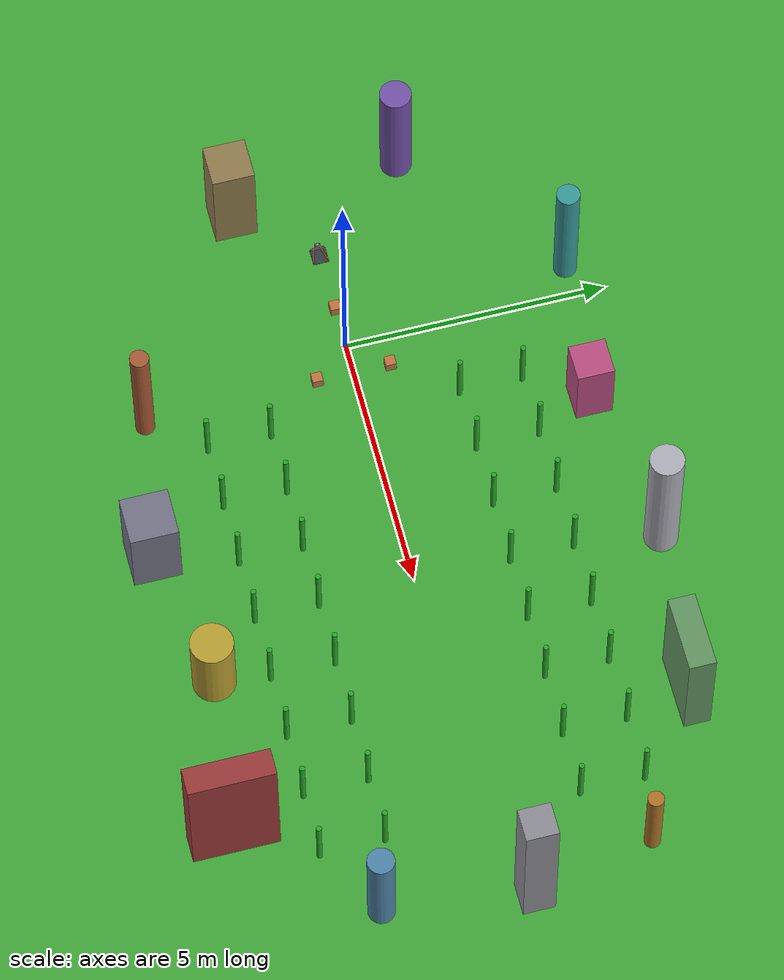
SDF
<?xml version="1.0" ?>
<sdf version="1.8">
  <world name="rover_world">

    <physics name="1ms" type="ignored">
      <max_step_size>0.002</max_step_size>
      <real_time_factor>1.0</real_time_factor>
    </physics>

    <plugin filename="ignition-gazebo-physics-system"        name="ignition::gazebo::systems::Physics"/>
    <plugin filename="ignition-gazebo-user-commands-system"  name="ignition::gazebo::systems::UserCommands"/>
    <plugin filename="ignition-gazebo-scene-broadcaster-system" name="ignition::gazebo::systems::SceneBroadcaster"/>
    <!-- Sensors plugin lives at WORLD level (not model level) so 3–10 rovers
         share one rendering pipeline instead of instantiating N competing ones. -->
    <!-- IMU is not a render sensor; it needs its own system or /rover_N/imu
         never publishes (found 2026-07-16 during Swarm-SLAM integration). -->
    <plugin filename="ignition-gazebo-imu-system" name="ignition::gazebo::systems::Imu"/>
    <plugin filename="ignition-gazebo-sensors-system" name="ignition::gazebo::systems::Sensors">
      <render_engine>ogre</render_engine>
    </plugin>

    <light name="sun" type="directional">
      <pose>0 0 10 0 0 0</pose>
      <cast_shadows>true</cast_shadows>
      <diffuse>1 1 1 1</diffuse>
      <specular>0.3 0.3 0.3 1</specular>
      <direction>-0.3 -0.4 -0.9</direction>
    </light>

    <scene>
      <ambient>0.5 0.5 0.5 1</ambient>
      <background>0.6 0.75 0.9 1</background>
      <grid>false</grid>
    </scene>

    <!-- GRASS GROUND -->
    <model name="ground">
      <static>true</static>
      <link name="ground_link">
        <collision name="ground_collision">
          <geometry><plane><normal>0 0 1</normal><size>30 30</size></plane></geometry>
          <surface><friction><ode><mu>1.0</mu><mu2>1.0</mu2></ode></friction></surface>
        </collision>
        <visual name="ground_visual">
          <geometry><plane><normal>0 0 1</normal><size>30 30</size></plane></geometry>
          <material>
            <ambient>0.20 0.55 0.18 1</ambient>
            <diffuse>0.25 0.65 0.22 1</diffuse>
            <specular>0.05 0.1 0.05 1</specular>
          </material>
        </visual>
      </link>
    </model>

    <!-- Small boxes near spawn so the 2 m sonars register something -->
    <model name="box_near_left">
      <static>true</static>
      <pose>0.6 0.7 0.1 0 0 0</pose>
      <link name="l">
        <collision name="c"><geometry><box><size>0.2 0.2 0.2</size></box></geometry></collision>
        <visual name="v">
          <geometry><box><size>0.2 0.2 0.2</size></box></geometry>
          <material><ambient>0.7 0.4 0.2 1</ambient><diffuse>0.75 0.45 0.25 1</diffuse></material>
        </visual>
      </link>
    </model>
    <model name="box_near_right">
      <static>true</static>
      <pose>0.6 -0.7 0.1 0 0 0</pose>
      <link name="l">
        <collision name="c"><geometry><box><size>0.2 0.2 0.2</size></box></geometry></collision>
        <visual name="v">
          <geometry><box><size>0.2 0.2 0.2</size></box></geometry>
          <material><ambient>0.7 0.4 0.2 1</ambient><diffuse>0.75 0.45 0.25 1</diffuse></material>
        </visual>
      </link>
    </model>
    <model name="box_behind">
      <static>true</static>
      <pose>-0.8 0.0 0.1 0 0 0</pose>
      <link name="l">
        <collision name="c"><geometry><box><size>0.2 0.2 0.2</size></box></geometry></collision>
        <visual name="v">
          <geometry><box><size>0.2 0.2 0.2</size></box></geometry>
          <material><ambient>0.7 0.4 0.2 1</ambient><diffuse>0.75 0.45 0.25 1</diffuse></material>
        </visual>
      </link>
    </model>

    <!-- Row Y=-3.0 -->
    <model name="crop_r1_p1"><static>true</static><pose>1.5 -3.0 0.6 0 0 0</pose><link name="l"><collision name="c"><geometry><cylinder><radius>0.05</radius><length>1.2</length></cylinder></geometry></collision><visual name="v"><geometry><cylinder><radius>0.05</radius><length>1.2</length></cylinder></geometry><material><ambient>0.1 0.55 0.1 1</ambient><diffuse>0.15 0.65 0.15 1</diffuse></material></visual></link></model>
    <model name="crop_r1_p2"><static>true</static><pose>2.7 -3.0 0.6 0 0 0</pose><link name="l"><collision name="c"><geometry><cylinder><radius>0.05</radius><length>1.2</length></cylinder></geometry></collision><visual name="v"><geometry><cylinder><radius>0.05</radius><length>1.2</length></cylinder></geometry><material><ambient>0.1 0.55 0.1 1</ambient><diffuse>0.15 0.65 0.15 1</diffuse></material></visual></link></model>
    <model name="crop_r1_p3"><static>true</static><pose>3.9 -3.0 0.6 0 0 0</pose><link name="l"><collision name="c"><geometry><cylinder><radius>0.05</radius><length>1.2</length></cylinder></geometry></collision><visual name="v"><geometry><cylinder><radius>0.05</radius><length>1.2</length></cylinder></geometry><material><ambient>0.1 0.55 0.1 1</ambient><diffuse>0.15 0.65 0.15 1</diffuse></material></visual></link></model>
    <model name="crop_r1_p4"><static>true</static><pose>5.1 -3.0 0.6 0 0 0</pose><link name="l"><collision name="c"><geometry><cylinder><radius>0.05</radius><length>1.2</length></cylinder></geometry></collision><visual name="v"><geometry><cylinder><radius>0.05</radius><length>1.2</length></cylinder></geometry><material><ambient>0.1 0.55 0.1 1</ambient><diffuse>0.15 0.65 0.15 1</diffuse></material></visual></link></model>
    <model name="crop_r1_p5"><static>true</static><pose>6.3 -3.0 0.6 0 0 0</pose><link name="l"><collision name="c"><geometry><cylinder><radius>0.05</radius><length>1.2</length></cylinder></geometry></collision><visual name="v"><geometry><cylinder><radius>0.05</radius><length>1.2</length></cylinder></geometry><material><ambient>0.1 0.55 0.1 1</ambient><diffuse>0.15 0.65 0.15 1</diffuse></material></visual></link></model>
    <model name="crop_r1_p6"><static>true</static><pose>7.5 -3.0 0.6 0 0 0</pose><link name="l"><collision name="c"><geometry><cylinder><radius>0.05</radius><length>1.2</length></cylinder></geometry></collision><visual name="v"><geometry><cylinder><radius>0.05</radius><length>1.2</length></cylinder></geometry><material><ambient>0.1 0.55 0.1 1</ambient><diffuse>0.15 0.65 0.15 1</diffuse></material></visual></link></model>
    <model name="crop_r1_p7"><static>true</static><pose>8.7 -3.0 0.6 0 0 0</pose><link name="l"><collision name="c"><geometry><cylinder><radius>0.05</radius><length>1.2</length></cylinder></geometry></collision><visual name="v"><geometry><cylinder><radius>0.05</radius><length>1.2</length></cylinder></geometry><material><ambient>0.1 0.55 0.1 1</ambient><diffuse>0.15 0.65 0.15 1</diffuse></material></visual></link></model>
    <model name="crop_r1_p8"><static>true</static><pose>9.9 -3.0 0.6 0 0 0</pose><link name="l"><collision name="c"><geometry><cylinder><radius>0.05</radius><length>1.2</length></cylinder></geometry></collision><visual name="v"><geometry><cylinder><radius>0.05</radius><length>1.2</length></cylinder></geometry><material><ambient>0.1 0.55 0.1 1</ambient><diffuse>0.15 0.65 0.15 1</diffuse></material></visual></link></model>

    <!-- Row Y=-1.8 -->
    <model name="crop_r2_p1"><static>true</static><pose>1.5 -1.8 0.6 0 0 0</pose><link name="l"><collision name="c"><geometry><cylinder><radius>0.05</radius><length>1.2</length></cylinder></geometry></collision><visual name="v"><geometry><cylinder><radius>0.05</radius><length>1.2</length></cylinder></geometry><material><ambient>0.1 0.55 0.1 1</ambient><diffuse>0.15 0.65 0.15 1</diffuse></material></visual></link></model>
    <model name="crop_r2_p2"><static>true</static><pose>2.7 -1.8 0.6 0 0 0</pose><link name="l"><collision name="c"><geometry><cylinder><radius>0.05</radius><length>1.2</length></cylinder></geometry></collision><visual name="v"><geometry><cylinder><radius>0.05</radius><length>1.2</length></cylinder></geometry><material><ambient>0.1 0.55 0.1 1</ambient><diffuse>0.15 0.65 0.15 1</diffuse></material></visual></link></model>
    <model name="crop_r2_p3"><static>true</static><pose>3.9 -1.8 0.6 0 0 0</pose><link name="l"><collision name="c"><geometry><cylinder><radius>0.05</radius><length>1.2</length></cylinder></geometry></collision><visual name="v"><geometry><cylinder><radius>0.05</radius><length>1.2</length></cylinder></geometry><material><ambient>0.1 0.55 0.1 1</ambient><diffuse>0.15 0.65 0.15 1</diffuse></material></visual></link></model>
    <model name="crop_r2_p4"><static>true</static><pose>5.1 -1.8 0.6 0 0 0</pose><link name="l"><collision name="c"><geometry><cylinder><radius>0.05</radius><length>1.2</length></cylinder></geometry></collision><visual name="v"><geometry><cylinder><radius>0.05</radius><length>1.2</length></cylinder></geometry><material><ambient>0.1 0.55 0.1 1</ambient><diffuse>0.15 0.65 0.15 1</diffuse></material></visual></link></model>
    <model name="crop_r2_p5"><static>true</static><pose>6.3 -1.8 0.6 0 0 0</pose><link name="l"><collision name="c"><geometry><cylinder><radius>0.05</radius><length>1.2</length></cylinder></geometry></collision><visual name="v"><geometry><cylinder><radius>0.05</radius><length>1.2</length></cylinder></geometry><material><ambient>0.1 0.55 0.1 1</ambient><diffuse>0.15 0.65 0.15 1</diffuse></material></visual></link></model>
    <model name="crop_r2_p6"><static>true</static><pose>7.5 -1.8 0.6 0 0 0</pose><link name="l"><collision name="c"><geometry><cylinder><radius>0.05</radius><length>1.2</length></cylinder></geometry></collision><visual name="v"><geometry><cylinder><radius>0.05</radius><length>1.2</length></cylinder></geometry><material><ambient>0.1 0.55 0.1 1</ambient><diffuse>0.15 0.65 0.15 1</diffuse></material></visual></link></model>
    <model name="crop_r2_p7"><static>true</static><pose>8.7 -1.8 0.6 0 0 0</pose><link name="l"><collision name="c"><geometry><cylinder><radius>0.05</radius><length>1.2</length></cylinder></geometry></collision><visual name="v"><geometry><cylinder><radius>0.05</radius><length>1.2</length></cylinder></geometry><material><ambient>0.1 0.55 0.1 1</ambient><diffuse>0.15 0.65 0.15 1</diffuse></material></visual></link></model>
    <model name="crop_r2_p8"><static>true</static><pose>9.9 -1.8 0.6 0 0 0</pose><link name="l"><collision name="c"><geometry><cylinder><radius>0.05</radius><length>1.2</length></cylinder></geometry></collision><visual name="v"><geometry><cylinder><radius>0.05</radius><length>1.2</length></cylinder></geometry><material><ambient>0.1 0.55 0.1 1</ambient><diffuse>0.15 0.65 0.15 1</diffuse></material></visual></link></model>

    <!-- Row Y=1.8 -->
    <model name="crop_r3_p1"><static>true</static><pose>1.5 1.8 0.6 0 0 0</pose><link name="l"><collision name="c"><geometry><cylinder><radius>0.05</radius><length>1.2</length></cylinder></geometry></collision><visual name="v"><geometry><cylinder><radius>0.05</radius><length>1.2</length></cylinder></geometry><material><ambient>0.1 0.55 0.1 1</ambient><diffuse>0.15 0.65 0.15 1</diffuse></material></visual></link></model>
    <model name="crop_r3_p2"><static>true</static><pose>2.7 1.8 0.6 0 0 0</pose><link name="l"><collision name="c"><geometry><cylinder><radius>0.05</radius><length>1.2</length></cylinder></geometry></collision><visual name="v"><geometry><cylinder><radius>0.05</radius><length>1.2</length></cylinder></geometry><material><ambient>0.1 0.55 0.1 1</ambient><diffuse>0.15 0.65 0.15 1</diffuse></material></visual></link></model>
    <model name="crop_r3_p3"><static>true</static><pose>3.9 1.8 0.6 0 0 0</pose><link name="l"><collision name="c"><geometry><cylinder><radius>0.05</radius><length>1.2</length></cylinder></geometry></collision><visual name="v"><geometry><cylinder><radius>0.05</radius><length>1.2</length></cylinder></geometry><material><ambient>0.1 0.55 0.1 1</ambient><diffuse>0.15 0.65 0.15 1</diffuse></material></visual></link></model>
    <model name="crop_r3_p4"><static>true</static><pose>5.1 1.8 0.6 0 0 0</pose><link name="l"><collision name="c"><geometry><cylinder><radius>0.05</radius><length>1.2</length></cylinder></geometry></collision><visual name="v"><geometry><cylinder><radius>0.05</radius><length>1.2</length></cylinder></geometry><material><ambient>0.1 0.55 0.1 1</ambient><diffuse>0.15 0.65 0.15 1</diffuse></material></visual></link></model>
    <model name="crop_r3_p5"><static>true</static><pose>6.3 1.8 0.6 0 0 0</pose><link name="l"><collision name="c"><geometry><cylinder><radius>0.05</radius><length>1.2</length></cylinder></geometry></collision><visual name="v"><geometry><cylinder><radius>0.05</radius><length>1.2</length></cylinder></geometry><material><ambient>0.1 0.55 0.1 1</ambient><diffuse>0.15 0.65 0.15 1</diffuse></material></visual></link></model>
    <model name="crop_r3_p6"><static>true</static><pose>7.5 1.8 0.6 0 0 0</pose><link name="l"><collision name="c"><geometry><cylinder><radius>0.05</radius><length>1.2</length></cylinder></geometry></collision><visual name="v"><geometry><cylinder><radius>0.05</radius><length>1.2</length></cylinder></geometry><material><ambient>0.1 0.55 0.1 1</ambient><diffuse>0.15 0.65 0.15 1</diffuse></material></visual></link></model>
    <model name="crop_r3_p7"><static>true</static><pose>8.7 1.8 0.6 0 0 0</pose><link name="l"><collision name="c"><geometry><cylinder><radius>0.05</radius><length>1.2</length></cylinder></geometry></collision><visual name="v"><geometry><cylinder><radius>0.05</radius><length>1.2</length></cylinder></geometry><material><ambient>0.1 0.55 0.1 1</ambient><diffuse>0.15 0.65 0.15 1</diffuse></material></visual></link></model>
    <model name="crop_r3_p8"><static>true</static><pose>9.9 1.8 0.6 0 0 0</pose><link name="l"><collision name="c"><geometry><cylinder><radius>0.05</radius><length>1.2</length></cylinder></geometry></collision><visual name="v"><geometry><cylinder><radius>0.05</radius><length>1.2</length></cylinder></geometry><material><ambient>0.1 0.55 0.1 1</ambient><diffuse>0.15 0.65 0.15 1</diffuse></material></visual></link></model>

    <!-- Row Y=3.0 -->
    <model name="crop_r4_p1"><static>true</static><pose>1.5 3.0 0.6 0 0 0</pose><link name="l"><collision name="c"><geometry><cylinder><radius>0.05</radius><length>1.2</length></cylinder></geometry></collision><visual name="v"><geometry><cylinder><radius>0.05</radius><length>1.2</length></cylinder></geometry><material><ambient>0.1 0.55 0.1 1</ambient><diffuse>0.15 0.65 0.15 1</diffuse></material></visual></link></model>
    <model name="crop_r4_p2"><static>true</static><pose>2.7 3.0 0.6 0 0 0</pose><link name="l"><collision name="c"><geometry><cylinder><radius>0.05</radius><length>1.2</length></cylinder></geometry></collision><visual name="v"><geometry><cylinder><radius>0.05</radius><length>1.2</length></cylinder></geometry><material><ambient>0.1 0.55 0.1 1</ambient><diffuse>0.15 0.65 0.15 1</diffuse></material></visual></link></model>
    <model name="crop_r4_p3"><static>true</static><pose>3.9 3.0 0.6 0 0 0</pose><link name="l"><collision name="c"><geometry><cylinder><radius>0.05</radius><length>1.2</length></cylinder></geometry></collision><visual name="v"><geometry><cylinder><radius>0.05</radius><length>1.2</length></cylinder></geometry><material><ambient>0.1 0.55 0.1 1</ambient><diffuse>0.15 0.65 0.15 1</diffuse></material></visual></link></model>
    <model name="crop_r4_p4"><static>true</static><pose>5.1 3.0 0.6 0 0 0</pose><link name="l"><collision name="c"><geometry><cylinder><radius>0.05</radius><length>1.2</length></cylinder></geometry></collision><visual name="v"><geometry><cylinder><radius>0.05</radius><length>1.2</length></cylinder></geometry><material><ambient>0.1 0.55 0.1 1</ambient><diffuse>0.15 0.65 0.15 1</diffuse></material></visual></link></model>
    <model name="crop_r4_p5"><static>true</static><pose>6.3 3.0 0.6 0 0 0</pose><link name="l"><collision name="c"><geometry><cylinder><radius>0.05</radius><length>1.2</length></cylinder></geometry></collision><visual name="v"><geometry><cylinder><radius>0.05</radius><length>1.2</length></cylinder></geometry><material><ambient>0.1 0.55 0.1 1</ambient><diffuse>0.15 0.65 0.15 1</diffuse></material></visual></link></model>
    <model name="crop_r4_p6"><static>true</static><pose>7.5 3.0 0.6 0 0 0</pose><link name="l"><collision name="c"><geometry><cylinder><radius>0.05</radius><length>1.2</length></cylinder></geometry></collision><visual name="v"><geometry><cylinder><radius>0.05</radius><length>1.2</length></cylinder></geometry><material><ambient>0.1 0.55 0.1 1</ambient><diffuse>0.15 0.65 0.15 1</diffuse></material></visual></link></model>
    <model name="crop_r4_p7"><static>true</static><pose>8.7 3.0 0.6 0 0 0</pose><link name="l"><collision name="c"><geometry><cylinder><radius>0.05</radius><length>1.2</length></cylinder></geometry></collision><visual name="v"><geometry><cylinder><radius>0.05</radius><length>1.2</length></cylinder></geometry><material><ambient>0.1 0.55 0.1 1</ambient><diffuse>0.15 0.65 0.15 1</diffuse></material></visual></link></model>
    <model name="crop_r4_p8"><static>true</static><pose>9.9 3.0 0.6 0 0 0</pose><link name="l"><collision name="c"><geometry><cylinder><radius>0.05</radius><length>1.2</length></cylinder></geometry></collision><visual name="v"><geometry><cylinder><radius>0.05</radius><length>1.2</length></cylinder></geometry><material><ambient>0.1 0.55 0.1 1</ambient><diffuse>0.15 0.65 0.15 1</diffuse></material></visual></link></model>

    <model name="charging_station_0">
      <static>true</static>
      <pose>-2.0 0 0 0 0 0</pose>
      <link name="base">
        <!-- Ground pad (dark gray slab so the station reads as a docking bay) -->
        <visual name="pad_v"><pose>0 0 0.005 0 0 0</pose><geometry><box><size>0.32 0.30 0.01</size></box></geometry><material><ambient>0.15 0.15 0.17 1</ambient><diffuse>0.22 0.22 0.25 1</diffuse></material></visual>
        <collision name="pad_c"><pose>0 0 0.005 0 0 0</pose><geometry><box><size>0.32 0.30 0.01</size></box></geometry></collision>

        <!-- Back plate: 25 cm wide, 8 cm tall, 2 cm thick, at back (x=-0.15) -->
        <visual name="back_v"><pose>-0.15 0 0.04 0 0 0</pose><geometry><box><size>0.02 0.25 0.08</size></box></geometry><material><ambient>0.35 0.35 0.38 1</ambient><diffuse>0.5 0.5 0.55 1</diffuse></material></visual>
        <collision name="back_c"><pose>-0.15 0 0.04 0 0 0</pose><geometry><box><size>0.02 0.25 0.08</size></box></geometry></collision>

        <!-- Left funnel wall: opens from throat (y=+0.06 at x=-0.15) to mouth (y=+0.14 at x=+0.15).
             Midpoint (0, 0.10, 0.04), length 0.31 m, yaw = atan2(0.08, 0.30) ≈ 0.2606 rad ≈ 14.9°. -->
        <visual name="wall_L_v"><pose>0 0.10 0.04 0 0 0.2606</pose><geometry><box><size>0.31 0.015 0.08</size></box></geometry><material><ambient>0.55 0.45 0.10 1</ambient><diffuse>0.75 0.60 0.15 1</diffuse></material></visual>
        <collision name="wall_L_c"><pose>0 0.10 0.04 0 0 0.2606</pose><geometry><box><size>0.31 0.015 0.08</size></box></geometry></collision>

        <!-- Right funnel wall: mirror of the left. -->
        <visual name="wall_R_v"><pose>0 -0.10 0.04 0 0 -0.2606</pose><geometry><box><size>0.31 0.015 0.08</size></box></geometry><material><ambient>0.55 0.45 0.10 1</ambient><diffuse>0.75 0.60 0.15 1</diffuse></material></visual>
        <collision name="wall_R_c"><pose>0 -0.10 0.04 0 0 -0.2606</pose><geometry><box><size>0.31 0.015 0.08</size></box></geometry></collision>

        <!-- Two pogo-pin contacts on back plate at wheel-clearance height (0.03 m). Cylinders oriented along X.
             Copper color so they read as electrical contacts. -->
        <visual name="pin_L_v"><pose>-0.135 0.03 0.03 0 1.5708 0</pose><geometry><cylinder><radius>0.008</radius><length>0.02</length></cylinder></geometry><material><ambient>0.55 0.30 0.10 1</ambient><diffuse>0.80 0.45 0.15 1</diffuse></material></visual>
        <collision name="pin_L_c"><pose>-0.135 0.03 0.03 0 1.5708 0</pose><geometry><cylinder><radius>0.008</radius><length>0.02</length></cylinder></geometry></collision>
        <visual name="pin_R_v"><pose>-0.135 -0.03 0.03 0 1.5708 0</pose><geometry><cylinder><radius>0.008</radius><length>0.02</length></cylinder></geometry><material><ambient>0.55 0.30 0.10 1</ambient><diffuse>0.80 0.45 0.15 1</diffuse></material></visual>
        <collision name="pin_R_c"><pose>-0.135 -0.03 0.03 0 1.5708 0</pose><geometry><cylinder><radius>0.008</radius><length>0.02</length></cylinder></geometry></collision>

        <!-- AprilTag mast: rises 15 cm above back plate; front-facing plate for the tag texture.
             White plate now — swap material for a real AprilTag PNG when the visual servo node comes online. -->
        <visual name="mast_v"><pose>-0.15 0 0.15 0 0 0</pose><geometry><box><size>0.02 0.10 0.14</size></box></geometry><material><ambient>0.30 0.30 0.32 1</ambient><diffuse>0.45 0.45 0.48 1</diffuse></material></visual>
        <collision name="mast_c"><pose>-0.15 0 0.15 0 0 0</pose><geometry><box><size>0.02 0.10 0.14</size></box></geometry></collision>
        <visual name="tag_v"><pose>-0.139 0 0.20 0 0 0</pose><geometry><box><size>0.002 0.06 0.06</size></box></geometry><material><ambient>0.95 0.95 0.95 1</ambient><diffuse>1 1 1 1</diffuse><emissive>0.4 0.4 0.4 1</emissive></material></visual>

        <!-- Status LED beacon (small green cylinder atop mast — visible cue that dock is "live") -->
        <visual name="led_v"><pose>-0.15 0 0.235 0 0 0</pose><geometry><cylinder><radius>0.012</radius><length>0.015</length></cylinder></geometry><material><ambient>0.1 0.6 0.1 1</ambient><diffuse>0.2 0.9 0.2 1</diffuse><emissive>0.1 0.5 0.1 1</emissive></material></visual>
      </link>
    </model>

    <!-- South edge -->
    <model name="lm_s1"><static>true</static><pose>0.7 -4.0 1.30 0 0 0</pose><link name="l"><collision name="c"><geometry><cylinder><radius>0.18</radius><length>2.6</length></cylinder></geometry></collision><visual name="v"><geometry><cylinder><radius>0.18</radius><length>2.6</length></cylinder></geometry><material><ambient>0.45 0.25 0.15 1</ambient><diffuse>0.65 0.35 0.20 1</diffuse></material></visual></link></model>
    <model name="lm_s2"><static>true</static><pose>3.4 -4.5 0.85 0 0 0</pose><link name="l"><collision name="c"><geometry><box><size>0.9 0.9 1.7</size></box></geometry></collision><visual name="v"><geometry><box><size>0.9 0.9 1.7</size></box></geometry><material><ambient>0.30 0.30 0.35 1</ambient><diffuse>0.45 0.45 0.52 1</diffuse></material></visual></link></model>
    <model name="lm_s3"><static>true</static><pose>6.1 -4.0 0.80 0 0 0</pose><link name="l"><collision name="c"><geometry><cylinder><radius>0.40</radius><length>1.6</length></cylinder></geometry></collision><visual name="v"><geometry><cylinder><radius>0.40</radius><length>1.6</length></cylinder></geometry><material><ambient>0.50 0.45 0.15 1</ambient><diffuse>0.72 0.62 0.20 1</diffuse></material></visual></link></model>
    <model name="lm_s4"><static>true</static><pose>9.2 -4.4 1.45 0 0 0</pose><link name="l"><collision name="c"><geometry><box><size>0.5 1.6 2.9</size></box></geometry></collision><visual name="v"><geometry><box><size>0.5 1.6 2.9</size></box></geometry><material><ambient>0.40 0.15 0.15 1</ambient><diffuse>0.60 0.22 0.22 1</diffuse></material></visual></link></model>

    <!-- East edge -->
    <model name="lm_e1"><static>true</static><pose>11.2 -2.2 1.10 0 0 0</pose><link name="l"><collision name="c"><geometry><cylinder><radius>0.25</radius><length>2.2</length></cylinder></geometry></collision><visual name="v"><geometry><cylinder><radius>0.25</radius><length>2.2</length></cylinder></geometry><material><ambient>0.20 0.35 0.45 1</ambient><diffuse>0.30 0.52 0.66 1</diffuse></material></visual></link></model>
    <model name="lm_e2"><static>true</static><pose>11.6 0.5 1.60 0 0 0</pose><link name="l"><collision name="c"><geometry><box><size>0.6 0.6 3.2</size></box></geometry></collision><visual name="v"><geometry><box><size>0.6 0.6 3.2</size></box></geometry><material><ambient>0.35 0.35 0.38 1</ambient><diffuse>0.55 0.55 0.58 1</diffuse></material></visual></link></model>
    <model name="lm_e3"><static>true</static><pose>11.1 2.8 0.90 0 0 0</pose><link name="l"><collision name="c"><geometry><cylinder><radius>0.15</radius><length>1.8</length></cylinder></geometry></collision><visual name="v"><geometry><cylinder><radius>0.15</radius><length>1.8</length></cylinder></geometry><material><ambient>0.45 0.30 0.10 1</ambient><diffuse>0.68 0.45 0.15 1</diffuse></material></visual></link></model>

    <!-- North edge -->
    <model name="lm_n1"><static>true</static><pose>8.4 4.2 1.20 0 0 0</pose><link name="l"><collision name="c"><geometry><box><size>1.4 0.5 2.4</size></box></geometry></collision><visual name="v"><geometry><box><size>1.4 0.5 2.4</size></box></geometry><material><ambient>0.25 0.40 0.25 1</ambient><diffuse>0.38 0.58 0.38 1</diffuse></material></visual></link></model>
    <model name="lm_n2"><static>true</static><pose>5.3 4.6 1.50 0 0 0</pose><link name="l"><collision name="c"><geometry><cylinder><radius>0.32</radius><length>3.0</length></cylinder></geometry></collision><visual name="v"><geometry><cylinder><radius>0.32</radius><length>3.0</length></cylinder></geometry><material><ambient>0.45 0.45 0.48 1</ambient><diffuse>0.68 0.68 0.72 1</diffuse></material></visual></link></model>
    <model name="lm_n3"><static>true</static><pose>2.2 4.1 0.75 0 0 0</pose><link name="l"><collision name="c"><geometry><box><size>0.7 0.7 1.5</size></box></geometry></collision><visual name="v"><geometry><box><size>0.7 0.7 1.5</size></box></geometry><material><ambient>0.50 0.20 0.35 1</ambient><diffuse>0.72 0.30 0.50 1</diffuse></material></visual></link></model>
    <model name="lm_n4"><static>true</static><pose>-0.6 4.4 1.35 0 0 0</pose><link name="l"><collision name="c"><geometry><cylinder><radius>0.22</radius><length>2.7</length></cylinder></geometry></collision><visual name="v"><geometry><cylinder><radius>0.22</radius><length>2.7</length></cylinder></geometry><material><ambient>0.15 0.40 0.40 1</ambient><diffuse>0.22 0.60 0.60 1</diffuse></material></visual></link></model>

    <!-- West edge (clear of the charging station at x=-2.0) -->
    <model name="lm_w1"><static>true</static><pose>-3.2 -1.4 1.05 0 0 0</pose><link name="l"><collision name="c"><geometry><box><size>0.8 0.8 2.1</size></box></geometry></collision><visual name="v"><geometry><box><size>0.8 0.8 2.1</size></box></geometry><material><ambient>0.38 0.32 0.20 1</ambient><diffuse>0.56 0.48 0.30 1</diffuse></material></visual></link></model>
    <model name="lm_w2"><static>true</static><pose>-3.6 1.9 1.25 0 0 0</pose><link name="l"><collision name="c"><geometry><cylinder><radius>0.30</radius><length>2.5</length></cylinder></geometry></collision><visual name="v"><geometry><cylinder><radius>0.30</radius><length>2.5</length></cylinder></geometry><material><ambient>0.30 0.20 0.45 1</ambient><diffuse>0.45 0.32 0.66 1</diffuse></material></visual></link></model>

  </world>
</sdf>
